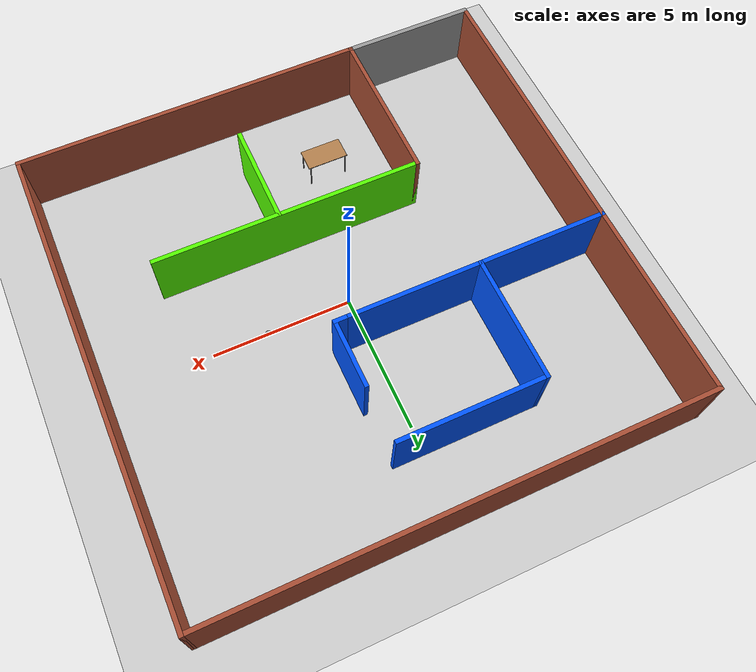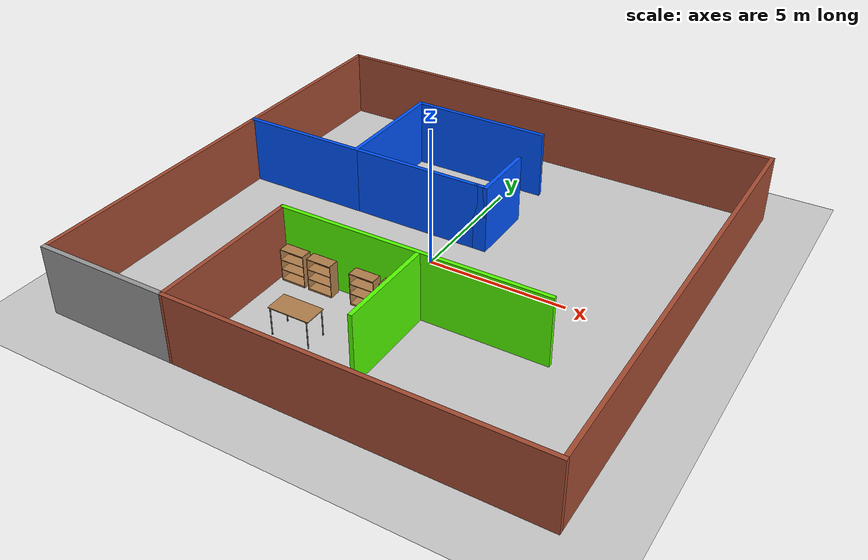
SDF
<sdf version="1.6">
 <world name="default">
  <model name="ground_plane">
   <static>1</static>
   <link name="link">
    <collision name="collision">
     <geometry><plane><normal>0 0 1</normal><size>100 100</size></plane></geometry>
     <surface><friction><ode><mu>100</mu><mu2>50</mu2></ode></friction></surface>
    </collision>
    <visual name="visual">
     <cast_shadows>0</cast_shadows>
     <geometry><plane><normal>0 0 1</normal><size>100 100</size></plane></geometry>
     <material>
      <script><uri>file://media/materials/scripts/gazebo.material</uri><name>Gazebo/Grey</name></script>
     </material>
    </visual>
   </link>
  </model>
  <model name="my_building">
   <pose>0.06133 -0.00347 0 0 -0 0</pose>
   <link name="Door_1">
    <collision name="Door_1_Collision">
     <geometry><box><size>4.8 0.17 2.5</size></box></geometry>
     <pose>0 0 1.25 0 -0 0</pose>
    </collision>
    <visual name="Door_1_Visual">
     <pose>0 0 1.25 0 -0 0</pose>
     <geometry><box><size>4.8 0.17 2.5</size></box></geometry>
     <material>
      <script><uri>file://media/materials/scripts/gazebo.material</uri><name>Gazebo/Grey</name></script>
     </material>
    </visual>
    <pose>-6.34787 -8.415 0 0 -0 0</pose>
   </link>
   <link name="Wall_13">
    <collision name="Wall_13_Collision">
     <geometry><box><size>4.75 0.15 2.5</size></box></geometry>
     <pose>0 0 1.25 0 -0 0</pose>
    </collision>
    <visual name="Wall_13_Visual">
     <pose>0 0 1.25 0 -0 0</pose>
     <geometry><box><size>4.75 0.15 2.5</size></box></geometry>
     <material>
      <script><uri>file://media/materials/scripts/gazebo.material</uri><name>Gazebo/Grey</name></script>
      <ambient>0 0.333333 1 1</ambient>
     </material>
     <meta><layer>0</layer></meta>
    </visual>
    <pose>-6.375 1.575 0 0 -0 3.14159</pose>
   </link>
   <link name="Wall_14">
    <collision name="Wall_14_Collision">
     <geometry><box><size>7 0.15 2.5</size></box></geometry>
     <pose>0 0 1.25 0 -0 0</pose>
    </collision>
    <visual name="Wall_14_Visual">
     <pose>0 0 1.25 0 -0 0</pose>
     <geometry><box><size>7 0.15 2.5</size></box></geometry>
     <material>
      <script><uri>file://media/materials/scripts/gazebo.material</uri><name>Gazebo/Bricks</name></script>
      <ambient>1 1 1 1</ambient>
     </material>
     <meta><layer>0</layer></meta>
    </visual>
    <pose>-8.675 5 0 0 -0 1.5708</pose>
   </link>
   <link name="Wall_15">
    <collision name="Wall_15_Collision">
     <geometry><box><size>17.5 0.15 2.5</size></box></geometry>
     <pose>0 0 1.25 0 -0 0</pose>
    </collision>
    <visual name="Wall_15_Visual">
     <pose>0 0 1.25 0 -0 0</pose>
     <geometry><box><size>17.5 0.15 2.5</size></box></geometry>
     <material>
      <script><uri>file://media/materials/scripts/gazebo.material</uri><name>Gazebo/Bricks</name></script>
      <ambient>1 1 1 1</ambient>
     </material>
     <meta><layer>0</layer></meta>
    </visual>
    <pose>0 8.425 0 0 -0 0</pose>
   </link>
   <link name="Wall_21">
    <collision name="Wall_21_Collision">
     <geometry><box><size>17 0.15 2.5</size></box></geometry>
     <pose>0 0 1.25 0 -0 0</pose>
    </collision>
    <visual name="Wall_21_Visual">
     <pose>0 0 1.25 0 -0 0</pose>
     <geometry><box><size>17 0.15 2.5</size></box></geometry>
     <material>
      <script><uri>file://media/materials/scripts/gazebo.material</uri><name>Gazebo/Bricks</name></script>
      <ambient>1 1 1 1</ambient>
     </material>
     <meta><layer>0</layer></meta>
    </visual>
    <pose>8.675 0 0 0 0 -1.5708</pose>
   </link>
   <link name="Wall_24">
    <collision name="Wall_24_Collision">
     <geometry><box><size>12.75 0.15 2.5</size></box></geometry>
     <pose>0 0 1.25 0 -0 0</pose>
    </collision>
    <visual name="Wall_24_Visual">
     <pose>0 0 1.25 0 -0 0</pose>
     <geometry><box><size>12.75 0.15 2.5</size></box></geometry>
     <material>
      <script><uri>file://media/materials/scripts/gazebo.material</uri><name>Gazebo/Bricks</name></script>
      <ambient>1 1 1 1</ambient>
     </material>
     <meta><layer>0</layer></meta>
    </visual>
    <pose>2.375 -8.425 0 0 -0 3.14159</pose>
   </link>
   <link name="Wall_25">
    <collision name="Wall_25_Collision">
     <geometry><box><size>5.75 0.15 2.5</size></box></geometry>
     <pose>0 0 1.25 0 -0 0</pose>
    </collision>
    <visual name="Wall_25_Visual">
     <pose>0 0 1.25 0 -0 0</pose>
     <geometry><box><size>5.75 0.15 2.5</size></box></geometry>
     <material>
      <script><uri>file://media/materials/scripts/gazebo.material</uri><name>Gazebo/Bricks</name></script>
      <ambient>1 1 1 1</ambient>
     </material>
     <meta><layer>0</layer></meta>
    </visual>
    <pose>-3.925 -5.625 0 0 -0 1.5708</pose>
   </link>
   <link name="Wall_26">
    <collision name="Wall_26_Collision">
     <geometry><box><size>9.75 0.15 2.5</size></box></geometry>
     <pose>0 0 1.25 0 -0 0</pose>
    </collision>
    <visual name="Wall_26_Visual">
     <pose>0 0 1.25 0 -0 0</pose>
     <geometry><box><size>9.75 0.15 2.5</size></box></geometry>
     <material>
      <script><uri>file://media/materials/scripts/gazebo.material</uri><name>Gazebo/Grey</name></script>
      <ambient>0.333333 1 0 1</ambient>
     </material>
     <meta><layer>0</layer></meta>
    </visual>
    <pose>0.875 -2.825 0 0 -0 0</pose>
   </link>
   <link name="Wall_30">
    <collision name="Wall_30_Collision">
     <geometry><box><size>4.5 0.15 2.5</size></box></geometry>
     <pose>0 0 1.25 0 -0 0</pose>
    </collision>
    <visual name="Wall_30_Visual">
     <pose>0 0 1.25 0 -0 0</pose>
     <geometry><box><size>4.5 0.15 2.5</size></box></geometry>
     <material>
      <script><uri>file://media/materials/scripts/gazebo.material</uri><name>Gazebo/Grey</name></script>
      <ambient>0 0.333333 1 1</ambient>
     </material>
     <meta><layer>0</layer></meta>
    </visual>
    <pose>-4.075 3.75 0 0 -0 1.5708</pose>
   </link>
   <link name="Wall_31">
    <collision name="Wall_31_Collision">
     <geometry><box><size>5.25 0.15 2.5</size></box></geometry>
     <pose>0 0 1.25 0 -0 0</pose>
    </collision>
    <visual name="Wall_31_Visual">
     <pose>0 0 1.25 0 -0 0</pose>
     <geometry><box><size>5.25 0.15 2.5</size></box></geometry>
     <material>
      <script><uri>file://media/materials/scripts/gazebo.material</uri><name>Gazebo/Grey</name></script>
      <ambient>0 0.333333 1 1</ambient>
     </material>
     <meta><layer>0</layer></meta>
    </visual>
    <pose>-1.525 5.925 0 0 -0 0</pose>
   </link>
   <link name="Wall_33">
    <collision name="Wall_33_Collision">
     <geometry><box><size>5 0.15 2.5</size></box></geometry>
     <pose>0 0 1.25 0 -0 0</pose>
    </collision>
    <visual name="Wall_33_Visual">
     <pose>0 0 1.25 0 -0 0</pose>
     <geometry><box><size>5 0.15 2.5</size></box></geometry>
     <material>
      <script><uri>file://media/materials/scripts/gazebo.material</uri><name>Gazebo/Grey</name></script>
      <ambient>0 0.333333 1 1</ambient>
     </material>
     <meta><layer>0</layer></meta>
    </visual>
    <pose>-1.65 1.575 0 0 -0 0</pose>
   </link>
   <link name="Wall_34">
    <collision name="Wall_34_Collision">
     <geometry><box><size>0.5 0.15 2.5</size></box></geometry>
     <pose>0 0 1.25 0 -0 0</pose>
    </collision>
    <visual name="Wall_34_Visual">
     <pose>0 0 1.25 0 -0 0</pose>
     <geometry><box><size>0.5 0.15 2.5</size></box></geometry>
     <material>
      <script><uri>file://media/materials/scripts/gazebo.material</uri><name>Gazebo/Grey</name></script>
      <ambient>0 0.333333 1 1</ambient>
     </material>
     <meta><layer>0</layer></meta>
    </visual>
    <pose>0.95 1.575 0 0 -0 0</pose>
   </link>
   <link name="Wall_35">
    <collision name="Wall_35_Collision">
     <geometry><box><size>2.5 0.15 2.5</size></box></geometry>
     <pose>0 0 1.25 0 -0 0</pose>
    </collision>
    <visual name="Wall_35_Visual">
     <pose>0 0 1.25 0 -0 0</pose>
     <geometry><box><size>2.5 0.15 2.5</size></box></geometry>
     <material>
      <script><uri>file://media/materials/scripts/gazebo.material</uri><name>Gazebo/Grey</name></script>
      <ambient>0 0.333333 1 1</ambient>
     </material>
     <meta><layer>0</layer></meta>
    </visual>
    <pose>1.125 2.75 0 0 -0 1.5708</pose>
   </link>
   <link name="Wall_37">
    <collision name="Wall_37_Collision">
     <geometry><box><size>10 0.15 2.5</size></box></geometry>
     <pose>0 0 1.25 0 -0 0</pose>
    </collision>
    <visual name="Wall_37_Visual">
     <pose>0 0 1.25 0 -0 0</pose>
     <geometry><box><size>10 0.15 2.5</size></box></geometry>
     <material>
      <script><uri>file://media/materials/scripts/gazebo.material</uri><name>Gazebo/Bricks</name></script>
      <ambient>1 1 1 1</ambient>
     </material>
     <meta><layer>0</layer></meta>
    </visual>
    <pose>-8.675 -3.35 0 0 0 -1.5708</pose>
   </link>
   <link name="Wall_39">
    <collision name="Wall_39_Collision">
     <geometry><box><size>3.75 0.15 2.5</size></box></geometry>
     <pose>0 0 1.25 0 -0 0</pose>
    </collision>
    <visual name="Wall_39_Visual">
     <pose>0 0 1.25 0 -0 0</pose>
     <geometry><box><size>3.75 0.15 2.5</size></box></geometry>
     <material>
      <script><uri>file://media/materials/scripts/gazebo.material</uri><name>Gazebo/Grey</name></script>
      <ambient>0.333333 1 0 1</ambient>
     </material>
     <meta><layer>0</layer></meta>
    </visual>
    <pose>1.24076 -4.62607 0 0 0 -1.5708</pose>
   </link>
   <static>1</static>
  </model>
  <model name="bookshelf">
   <static>1</static>
   <link name="link">
    <inertial><mass>1</mass></inertial>
    <collision name="back">
     <pose>0 0.005 0.6 0 -0 0</pose>
     <geometry><box><size>0.9 0.01 1.2</size></box></geometry>
    </collision>
    <visual name="visual1">
     <pose>0 0.005 0.6 0 -0 0</pose>
     <geometry><box><size>0.9 0.01 1.2</size></box></geometry>
     <material>
      <script><uri>file://media/materials/scripts/gazebo.material</uri><name>Gazebo/Wood</name></script>
     </material>
    </visual>
    <collision name="left_side">
     <pose>0.45 -0.195 0.6 0 -0 0</pose>
     <geometry><box><size>0.02 0.4 1.2</size></box></geometry>
    </collision>
    <visual name="visual2">
     <pose>0.45 -0.195 0.6 0 -0 0</pose>
     <geometry><box><size>0.02 0.4 1.2</size></box></geometry>
     <material>
      <script><uri>file://media/materials/scripts/gazebo.material</uri><name>Gazebo/Wood</name></script>
     </material>
    </visual>
    <collision name="right_side">
     <pose>-0.45 -0.195 0.6 0 -0 0</pose>
     <geometry><box><size>0.02 0.4 1.2</size></box></geometry>
    </collision>
    <visual name="visual3">
     <pose>-0.45 -0.195 0.6 0 -0 0</pose>
     <geometry><box><size>0.02 0.4 1.2</size></box></geometry>
     <material>
      <script><uri>file://media/materials/scripts/gazebo.material</uri><name>Gazebo/Wood</name></script>
     </material>
    </visual>
    <collision name="bottom">
     <pose>0 -0.195 0.03 0 -0 0</pose>
     <geometry><box><size>0.88 0.4 0.06</size></box></geometry>
    </collision>
    <visual name="visual4">
     <pose>0 -0.195 0.03 0 -0 0</pose>
     <geometry><box><size>0.88 0.4 0.06</size></box></geometry>
     <material>
      <script><uri>file://media/materials/scripts/gazebo.material</uri><name>Gazebo/Wood</name></script>
     </material>
    </visual>
    <collision name="top">
     <pose>0 -0.195 1.19 0 -0 0</pose>
     <geometry><box><size>0.88 0.4 0.02</size></box></geometry>
    </collision>
    <visual name="visual5">
     <pose>0 -0.195 1.19 0 -0 0</pose>
     <geometry><box><size>0.88 0.4 0.02</size></box></geometry>
     <material>
      <script><uri>file://media/materials/scripts/gazebo.material</uri><name>Gazebo/Wood</name></script>
     </material>
    </visual>
    <collision name="low_shelf">
     <pose>0 -0.195 0.43 0 -0 0</pose>
     <geometry><box><size>0.88 0.4 0.02</size></box></geometry>
    </collision>
    <visual name="visual6">
     <pose>0 -0.195 0.43 0 -0 0</pose>
     <geometry><box><size>0.88 0.4 0.02</size></box></geometry>
     <material>
      <script><uri>file://media/materials/scripts/gazebo.material</uri><name>Gazebo/Wood</name></script>
     </material>
    </visual>
    <collision name="high_shelf">
     <pose>0 -0.195 0.8 0 -0 0</pose>
     <geometry><box><size>0.88 0.4 0.02</size></box></geometry>
    </collision>
    <visual name="visual7">
     <pose>0 -0.195 0.8 0 -0 0</pose>
     <geometry><box><size>0.88 0.4 0.02</size></box></geometry>
     <material>
      <script><uri>file://media/materials/scripts/gazebo.material</uri><name>Gazebo/Wood</name></script>
     </material>
    </visual>
   </link>
   <pose>-3.20385 -2.9972 0 0 -0 0</pose>
  </model>
  <model name="bookshelf_clone">
   <static>1</static>
   <link name="link">
    <inertial><mass>1</mass></inertial>
    <collision name="back">
     <pose>0 0.005 0.6 0 -0 0</pose>
     <geometry><box><size>0.9 0.01 1.2</size></box></geometry>
    </collision>
    <visual name="visual1">
     <pose>0 0.005 0.6 0 -0 0</pose>
     <geometry><box><size>0.9 0.01 1.2</size></box></geometry>
     <material>
      <script><uri>file://media/materials/scripts/gazebo.material</uri><name>Gazebo/Wood</name></script>
     </material>
    </visual>
    <collision name="left_side">
     <pose>0.45 -0.195 0.6 0 -0 0</pose>
     <geometry><box><size>0.02 0.4 1.2</size></box></geometry>
    </collision>
    <visual name="visual2">
     <pose>0.45 -0.195 0.6 0 -0 0</pose>
     <geometry><box><size>0.02 0.4 1.2</size></box></geometry>
     <material>
      <script><uri>file://media/materials/scripts/gazebo.material</uri><name>Gazebo/Wood</name></script>
     </material>
    </visual>
    <collision name="right_side">
     <pose>-0.45 -0.195 0.6 0 -0 0</pose>
     <geometry><box><size>0.02 0.4 1.2</size></box></geometry>
    </collision>
    <visual name="visual3">
     <pose>-0.45 -0.195 0.6 0 -0 0</pose>
     <geometry><box><size>0.02 0.4 1.2</size></box></geometry>
     <material>
      <script><uri>file://media/materials/scripts/gazebo.material</uri><name>Gazebo/Wood</name></script>
     </material>
    </visual>
    <collision name="bottom">
     <pose>0 -0.195 0.03 0 -0 0</pose>
     <geometry><box><size>0.88 0.4 0.06</size></box></geometry>
    </collision>
    <visual name="visual4">
     <pose>0 -0.195 0.03 0 -0 0</pose>
     <geometry><box><size>0.88 0.4 0.06</size></box></geometry>
     <material>
      <script><uri>file://media/materials/scripts/gazebo.material</uri><name>Gazebo/Wood</name></script>
     </material>
    </visual>
    <collision name="top">
     <pose>0 -0.195 1.19 0 -0 0</pose>
     <geometry><box><size>0.88 0.4 0.02</size></box></geometry>
    </collision>
    <visual name="visual5">
     <pose>0 -0.195 1.19 0 -0 0</pose>
     <geometry><box><size>0.88 0.4 0.02</size></box></geometry>
     <material>
      <script><uri>file://media/materials/scripts/gazebo.material</uri><name>Gazebo/Wood</name></script>
     </material>
    </visual>
    <collision name="low_shelf">
     <pose>0 -0.195 0.43 0 -0 0</pose>
     <geometry><box><size>0.88 0.4 0.02</size></box></geometry>
    </collision>
    <visual name="visual6">
     <pose>0 -0.195 0.43 0 -0 0</pose>
     <geometry><box><size>0.88 0.4 0.02</size></box></geometry>
     <material>
      <script><uri>file://media/materials/scripts/gazebo.material</uri><name>Gazebo/Wood</name></script>
     </material>
    </visual>
    <collision name="high_shelf">
     <pose>0 -0.195 0.8 0 -0 0</pose>
     <geometry><box><size>0.88 0.4 0.02</size></box></geometry>
    </collision>
    <visual name="visual7">
     <pose>0 -0.195 0.8 0 -0 0</pose>
     <geometry><box><size>0.88 0.4 0.02</size></box></geometry>
     <material>
      <script><uri>file://media/materials/scripts/gazebo.material</uri><name>Gazebo/Wood</name></script>
     </material>
    </visual>
   </link>
   <pose>-2.13806 -3.00313 0 0 -0 0</pose>
  </model>
  <model name="bookshelf_clone_0">
   <static>1</static>
   <link name="link">
    <inertial><mass>1</mass></inertial>
    <collision name="back">
     <pose>0 0.005 0.6 0 -0 0</pose>
     <geometry><box><size>0.9 0.01 1.2</size></box></geometry>
    </collision>
    <visual name="visual1">
     <pose>0 0.005 0.6 0 -0 0</pose>
     <geometry><box><size>0.9 0.01 1.2</size></box></geometry>
     <material>
      <script><uri>file://media/materials/scripts/gazebo.material</uri><name>Gazebo/Wood</name></script>
     </material>
    </visual>
    <collision name="left_side">
     <pose>0.45 -0.195 0.6 0 -0 0</pose>
     <geometry><box><size>0.02 0.4 1.2</size></box></geometry>
    </collision>
    <visual name="visual2">
     <pose>0.45 -0.195 0.6 0 -0 0</pose>
     <geometry><box><size>0.02 0.4 1.2</size></box></geometry>
     <material>
      <script><uri>file://media/materials/scripts/gazebo.material</uri><name>Gazebo/Wood</name></script>
     </material>
    </visual>
    <collision name="right_side">
     <pose>-0.45 -0.195 0.6 0 -0 0</pose>
     <geometry><box><size>0.02 0.4 1.2</size></box></geometry>
    </collision>
    <visual name="visual3">
     <pose>-0.45 -0.195 0.6 0 -0 0</pose>
     <geometry><box><size>0.02 0.4 1.2</size></box></geometry>
     <material>
      <script><uri>file://media/materials/scripts/gazebo.material</uri><name>Gazebo/Wood</name></script>
     </material>
    </visual>
    <collision name="bottom">
     <pose>0 -0.195 0.03 0 -0 0</pose>
     <geometry><box><size>0.88 0.4 0.06</size></box></geometry>
    </collision>
    <visual name="visual4">
     <pose>0 -0.195 0.03 0 -0 0</pose>
     <geometry><box><size>0.88 0.4 0.06</size></box></geometry>
     <material>
      <script><uri>file://media/materials/scripts/gazebo.material</uri><name>Gazebo/Wood</name></script>
     </material>
    </visual>
    <collision name="top">
     <pose>0 -0.195 1.19 0 -0 0</pose>
     <geometry><box><size>0.88 0.4 0.02</size></box></geometry>
    </collision>
    <visual name="visual5">
     <pose>0 -0.195 1.19 0 -0 0</pose>
     <geometry><box><size>0.88 0.4 0.02</size></box></geometry>
     <material>
      <script><uri>file://media/materials/scripts/gazebo.material</uri><name>Gazebo/Wood</name></script>
     </material>
    </visual>
    <collision name="low_shelf">
     <pose>0 -0.195 0.43 0 -0 0</pose>
     <geometry><box><size>0.88 0.4 0.02</size></box></geometry>
    </collision>
    <visual name="visual6">
     <pose>0 -0.195 0.43 0 -0 0</pose>
     <geometry><box><size>0.88 0.4 0.02</size></box></geometry>
     <material>
      <script><uri>file://media/materials/scripts/gazebo.material</uri><name>Gazebo/Wood</name></script>
     </material>
    </visual>
    <collision name="high_shelf">
     <pose>0 -0.195 0.8 0 -0 0</pose>
     <geometry><box><size>0.88 0.4 0.02</size></box></geometry>
    </collision>
    <visual name="visual7">
     <pose>0 -0.195 0.8 0 -0 0</pose>
     <geometry><box><size>0.88 0.4 0.02</size></box></geometry>
     <material>
      <script><uri>file://media/materials/scripts/gazebo.material</uri><name>Gazebo/Wood</name></script>
     </material>
    </visual>
   </link>
   <pose>0.597484 -2.96142 0 0 -0 0</pose>
  </model>
  <model name="bookshelf_clone_1">
   <static>1</static>
   <link name="link">
    <inertial><mass>1</mass></inertial>
    <collision name="back">
     <pose>0 0.005 0.6 0 -0 0</pose>
     <geometry><box><size>0.9 0.01 1.2</size></box></geometry>
    </collision>
    <visual name="visual1">
     <pose>0 0.005 0.6 0 -0 0</pose>
     <geometry><box><size>0.9 0.01 1.2</size></box></geometry>
     <material>
      <script><uri>file://media/materials/scripts/gazebo.material</uri><name>Gazebo/Wood</name></script>
     </material>
    </visual>
    <collision name="left_side">
     <pose>0.45 -0.195 0.6 0 -0 0</pose>
     <geometry><box><size>0.02 0.4 1.2</size></box></geometry>
    </collision>
    <visual name="visual2">
     <pose>0.45 -0.195 0.6 0 -0 0</pose>
     <geometry><box><size>0.02 0.4 1.2</size></box></geometry>
     <material>
      <script><uri>file://media/materials/scripts/gazebo.material</uri><name>Gazebo/Wood</name></script>
     </material>
    </visual>
    <collision name="right_side">
     <pose>-0.45 -0.195 0.6 0 -0 0</pose>
     <geometry><box><size>0.02 0.4 1.2</size></box></geometry>
    </collision>
    <visual name="visual3">
     <pose>-0.45 -0.195 0.6 0 -0 0</pose>
     <geometry><box><size>0.02 0.4 1.2</size></box></geometry>
     <material>
      <script><uri>file://media/materials/scripts/gazebo.material</uri><name>Gazebo/Wood</name></script>
     </material>
    </visual>
    <collision name="bottom">
     <pose>0 -0.195 0.03 0 -0 0</pose>
     <geometry><box><size>0.88 0.4 0.06</size></box></geometry>
    </collision>
    <visual name="visual4">
     <pose>0 -0.195 0.03 0 -0 0</pose>
     <geometry><box><size>0.88 0.4 0.06</size></box></geometry>
     <material>
      <script><uri>file://media/materials/scripts/gazebo.material</uri><name>Gazebo/Wood</name></script>
     </material>
    </visual>
    <collision name="top">
     <pose>0 -0.195 1.19 0 -0 0</pose>
     <geometry><box><size>0.88 0.4 0.02</size></box></geometry>
    </collision>
    <visual name="visual5">
     <pose>0 -0.195 1.19 0 -0 0</pose>
     <geometry><box><size>0.88 0.4 0.02</size></box></geometry>
     <material>
      <script><uri>file://media/materials/scripts/gazebo.material</uri><name>Gazebo/Wood</name></script>
     </material>
    </visual>
    <collision name="low_shelf">
     <pose>0 -0.195 0.43 0 -0 0</pose>
     <geometry><box><size>0.88 0.4 0.02</size></box></geometry>
    </collision>
    <visual name="visual6">
     <pose>0 -0.195 0.43 0 -0 0</pose>
     <geometry><box><size>0.88 0.4 0.02</size></box></geometry>
     <material>
      <script><uri>file://media/materials/scripts/gazebo.material</uri><name>Gazebo/Wood</name></script>
     </material>
    </visual>
    <collision name="high_shelf">
     <pose>0 -0.195 0.8 0 -0 0</pose>
     <geometry><box><size>0.88 0.4 0.02</size></box></geometry>
    </collision>
    <visual name="visual7">
     <pose>0 -0.195 0.8 0 -0 0</pose>
     <geometry><box><size>0.88 0.4 0.02</size></box></geometry>
     <material>
      <script><uri>file://media/materials/scripts/gazebo.material</uri><name>Gazebo/Wood</name></script>
     </material>
    </visual>
   </link>
   <pose>-0.5159 -2.97189 0 0 -0 0</pose>
  </model>
  <model name="table">
   <static>1</static>
   <link name="link">
    <collision name="surface">
     <pose>0 0 1 0 -0 0</pose>
     <geometry><box><size>1.5 0.8 0.03</size></box></geometry>
     <surface><friction><ode><mu>0.6</mu><mu2>0.6</mu2></ode></friction></surface>
    </collision>
    <visual name="visual1">
     <pose>0 0 1 0 -0 0</pose>
     <geometry><box><size>1.5 0.8 0.03</size></box></geometry>
     <material>
      <script><uri>file://media/materials/scripts/gazebo.material</uri><name>Gazebo/Wood</name></script>
     </material>
    </visual>
    <collision name="front_left_leg">
     <pose>0.68 0.38 0.5 0 -0 0</pose>
     <geometry><cylinder><radius>0.02</radius><length>1</length></cylinder></geometry>
    </collision>
    <visual name="front_left_leg">
     <pose>0.68 0.38 0.5 0 -0 0</pose>
     <geometry><cylinder><radius>0.02</radius><length>1</length></cylinder></geometry>
     <material>
      <script><uri>file://media/materials/scripts/gazebo.material</uri><name>Gazebo/Grey</name></script>
     </material>
    </visual>
    <collision name="front_right_leg">
     <pose>0.68 -0.38 0.5 0 -0 0</pose>
     <geometry><cylinder><radius>0.02</radius><length>1</length></cylinder></geometry>
    </collision>
    <visual name="front_right_leg">
     <pose>0.68 -0.38 0.5 0 -0 0</pose>
     <geometry><cylinder><radius>0.02</radius><length>1</length></cylinder></geometry>
     <material>
      <script><uri>file://media/materials/scripts/gazebo.material</uri><name>Gazebo/Grey</name></script>
     </material>
    </visual>
    <collision name="back_right_leg">
     <pose>-0.68 -0.38 0.5 0 -0 0</pose>
     <geometry><cylinder><radius>0.02</radius><length>1</length></cylinder></geometry>
    </collision>
    <visual name="back_right_leg">
     <pose>-0.68 -0.38 0.5 0 -0 0</pose>
     <geometry><cylinder><radius>0.02</radius><length>1</length></cylinder></geometry>
     <material>
      <script><uri>file://media/materials/scripts/gazebo.material</uri><name>Gazebo/Grey</name></script>
     </material>
    </visual>
    <collision name="back_left_leg">
     <pose>-0.68 0.38 0.5 0 -0 0</pose>
     <geometry><cylinder><radius>0.02</radius><length>1</length></cylinder></geometry>
    </collision>
    <visual name="back_left_leg">
     <pose>-0.68 0.38 0.5 0 -0 0</pose>
     <geometry><cylinder><radius>0.02</radius><length>1</length></cylinder></geometry>
     <material>
      <script><uri>file://media/materials/scripts/gazebo.material</uri><name>Gazebo/Grey</name></script>
     </material>
    </visual>
   </link>
   <pose>-1.4634 -5.47109 0 0 -0 0</pose>
  </model>
  <model name="white_ball">
   <link name="link_0">
    <inertial>
     <mass>1</mass>
     <inertia><ixx>0.1</ixx><ixy>0</ixy><ixz>0</ixz><iyy>0.1</iyy><iyz>0</iyz><izz>0.1</izz></inertia>
    </inertial>
    <visual name="visual">
     <geometry><sphere><radius>0.1</radius></sphere></geometry>
     <material>
      <lighting>1</lighting>
      <script><uri>file://media/materials/scripts/gazebo.material</uri><name>Gazebo/Grey</name></script>
      <shader type="pixel"><normal_map>__default__</normal_map></shader>
      <ambient>1 1 1 1</ambient>
      <diffuse>1 1 1 1</diffuse>
      <specular>1 1 1 1</specular>
      <emissive>1 1 1 1</emissive>
     </material>
    </visual>
    <collision name="collision">
     <geometry><sphere><radius>0.1</radius></sphere></geometry>
     <surface>
      <friction>
       <ode><mu>1</mu><mu2>1</mu2><fdir1>0 0 0</fdir1><slip1>0</slip1><slip2>0</slip2></ode>
       <torsional>
        <coefficient>1</coefficient>
        <patch_radius>0</patch_radius>
        <surface_radius>0</surface_radius>
        <use_patch_radius>1</use_patch_radius>
        <ode><slip>0</slip></ode>
       </torsional>
      </friction>
      <bounce><restitution_coefficient>0</restitution_coefficient><threshold>1e+06</threshold></bounce>
      <contact>
       <collide_without_contact>0</collide_without_contact>
       <collide_without_contact_bitmask>1</collide_without_contact_bitmask>
       <collide_bitmask>1</collide_bitmask>
       <ode>
        <soft_cfm>0</soft_cfm>
        <soft_erp>0.2</soft_erp>
        <kp>1e+13</kp>
        <kd>1</kd>
        <max_vel>0.01</max_vel>
        <min_depth>0</min_depth>
       </ode>
       <bullet>
        <split_impulse>1</split_impulse>
        <split_impulse_penetration_threshold>-0.01</split_impulse_penetration_threshold>
        <soft_cfm>0</soft_cfm>
        <soft_erp>0.2</soft_erp>
        <kp>1e+13</kp>
        <kd>1</kd>
       </bullet>
      </contact>
     </surface>
    </collision>
   </link>
   <static>0</static>
   <pose>2.99016 -0.000926 0.1 0 -0 0</pose>
  </model>
 </world>
</sdf>
